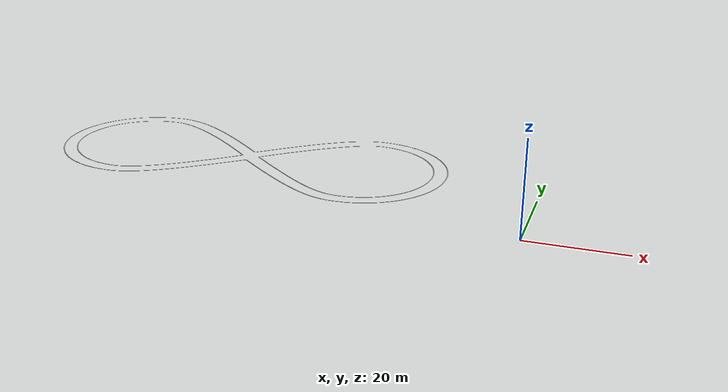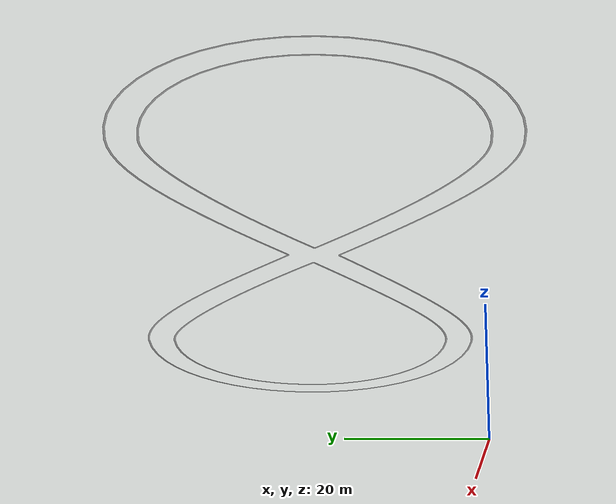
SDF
<?xml version="1.0" ?>
<sdf version="1.5">
	<model name="mbzirc">
	    	<static>true</static>
		<pose>-115 55 0.01 0 -0 0</pose>
           <allow_auto_disable>true</allow_auto_disable>
	    	<link name="link_track">
			<pose>0 0 0 0 0 0</pose>
			<gravity>true</gravity>
			<self_collide>false</self_collide>
			<kinematic>false</kinematic>
		      <visual name="visual_track">
				<pose>0 0 0 0 0 0</pose>
		      	<geometry>
		           		<mesh>
		            		<uri>model://mbzirc/meshes/track.stl</uri>
		          			<scale>100 100 100</scale>
		          		</mesh>
		        	</geometry>
			      <material>Gazebo/Blue</material>
		     </visual>
	    </link>
	</model>
</sdf>
